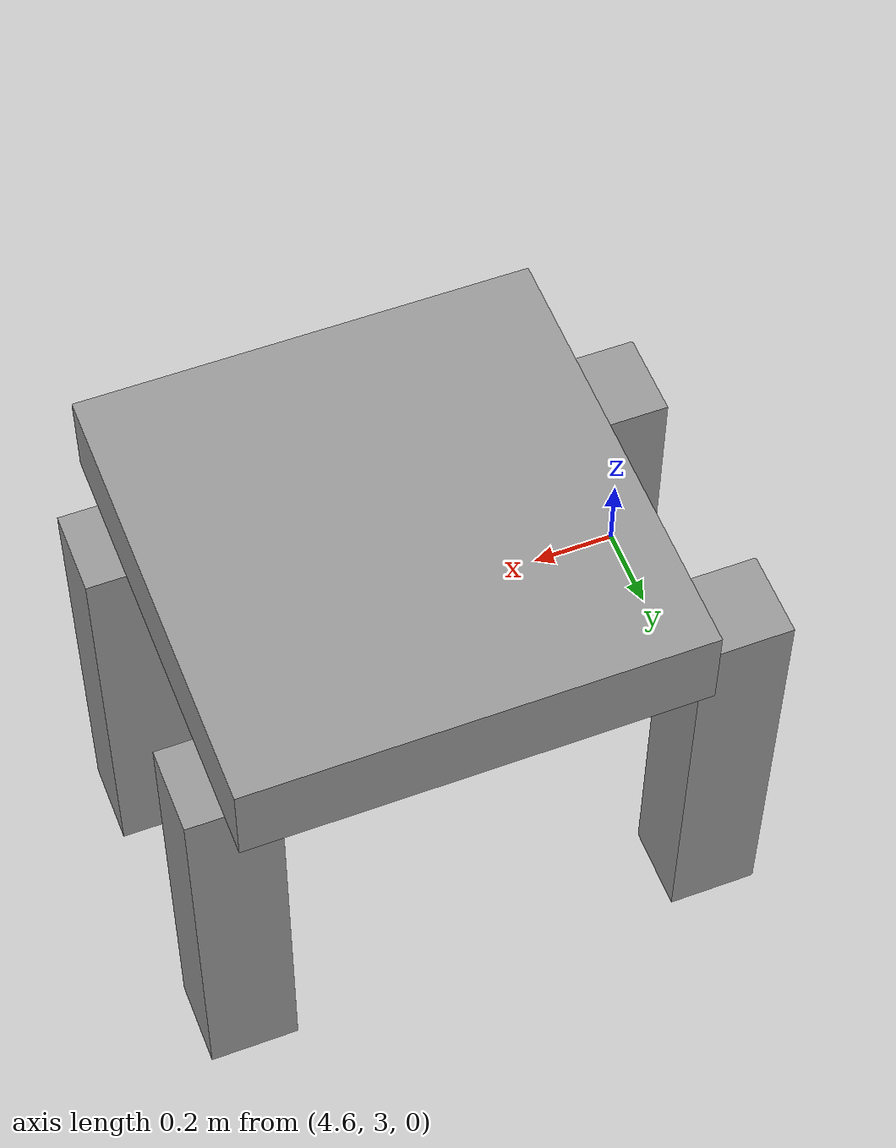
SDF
<?xml version='1.0'?>
<sdf version='1.6'>
  <model name='model'>
    <link name='link_1'>
      <pose frame=''>5.86822 3.27887 0.5 0 -0 0</pose>
      <inertial>
        <mass>1</mass>
        <inertia>
          <ixx>0.166667</ixx>
          <ixy>0</ixy>
          <ixz>0</ixz>
          <iyy>0.166667</iyy>
          <iyz>0</iyz>
          <izz>0.166667</izz>
        </inertia>
        <pose frame=''>0 0 0 0 -0 0</pose>
      </inertial>
      <gravity>1</gravity>
      <self_collide>0</self_collide>
      <kinematic>0</kinematic>
      <visual name='visual'>
        <pose frame=''>0 0 0 0 -0 0</pose>
        <geometry>
          <box>
            <size>0.2 0.19 1</size>
          </box>
        </geometry>
        <material>
          <lighting>1</lighting>
          <script>
            <uri>file://media/materials/scripts/gazebo.material</uri>
            <name>Gazebo/Grey</name>
          </script>
          <shader type='pixel'>
            <normal_map>__default__</normal_map>
          </shader>
          <ambient>0.3 0.3 0.3 1</ambient>
          <diffuse>0.7 0.7 0.7 1</diffuse>
          <specular>0.01 0.01 0.01 1</specular>
          <emissive>0 0 0 1</emissive>
        </material>
        <transparency>0</transparency>
        <cast_shadows>1</cast_shadows>
      </visual>
      <collision name='collision'>
        <laser_retro>0</laser_retro>
        <max_contacts>10</max_contacts>
        <pose frame=''>0 0 0 0 -0 0</pose>
        <geometry>
          <box>
            <size>0.2 0.2 1</size>
          </box>
        </geometry>
        <surface>
          <friction>
            <ode>
              <mu>1</mu>
              <mu2>1</mu2>
              <fdir1>0 0 0</fdir1>
              <slip1>0</slip1>
              <slip2>0</slip2>
            </ode>
            <torsional>
              <coefficient>1</coefficient>
              <patch_radius>0</patch_radius>
              <surface_radius>0</surface_radius>
              <use_patch_radius>1</use_patch_radius>
              <ode>
                <slip>0</slip>
              </ode>
            </torsional>
          </friction>
          <bounce>
            <restitution_coefficient>0</restitution_coefficient>
            <threshold>1e+06</threshold>
          </bounce>
          <contact>
            <collide_without_contact>0</collide_without_contact>
            <collide_without_contact_bitmask>1</collide_without_contact_bitmask>
            <collide_bitmask>1</collide_bitmask>
            <ode>
              <soft_cfm>0</soft_cfm>
              <soft_erp>0.2</soft_erp>
              <kp>1e+13</kp>
              <kd>1</kd>
              <max_vel>0.01</max_vel>
              <min_depth>0</min_depth>
            </ode>
            <bullet>
              <split_impulse>1</split_impulse>
              <split_impulse_penetration_threshold>-0.01</split_impulse_penetration_threshold>
              <soft_cfm>0</soft_cfm>
              <soft_erp>0.2</soft_erp>
              <kp>1e+13</kp>
              <kd>1</kd>
            </bullet>
          </contact>
        </surface>
      </collision>
    </link>
    <link name='link_1_clone'>
      <pose frame=''>5.86397 3.88662 0.5 0 -0 0</pose>
      <inertial>
        <mass>1</mass>
        <inertia>
          <ixx>0.166667</ixx>
          <ixy>0</ixy>
          <ixz>0</ixz>
          <iyy>0.166667</iyy>
          <iyz>0</iyz>
          <izz>0.166667</izz>
        </inertia>
        <pose frame=''>0 0 0 0 -0 0</pose>
      </inertial>
      <self_collide>0</self_collide>
      <kinematic>0</kinematic>
      <visual name='visual'>
        <pose frame=''>0 0 0 0 -0 0</pose>
        <geometry>
          <box>
            <size>0.2 0.19 1</size>
          </box>
        </geometry>
        <material>
          <lighting>1</lighting>
          <script>
            <uri>file://media/materials/scripts/gazebo.material</uri>
            <name>Gazebo/Grey</name>
          </script>
          <shader type='pixel'>
            <normal_map>__default__</normal_map>
          </shader>
          <ambient>0.3 0.3 0.3 1</ambient>
          <diffuse>0.7 0.7 0.7 1</diffuse>
          <specular>0.01 0.01 0.01 1</specular>
          <emissive>0 0 0 1</emissive>
        </material>
        <transparency>0</transparency>
        <cast_shadows>1</cast_shadows>
      </visual>
      <collision name='collision'>
        <laser_retro>0</laser_retro>
        <max_contacts>10</max_contacts>
        <pose frame=''>0 0 0 0 -0 0</pose>
        <geometry>
          <box>
            <size>0.2 0.2 1</size>
          </box>
        </geometry>
        <surface>
          <friction>
            <ode>
              <mu>1</mu>
              <mu2>1</mu2>
              <fdir1>0 0 0</fdir1>
              <slip1>0</slip1>
              <slip2>0</slip2>
            </ode>
            <torsional>
              <coefficient>1</coefficient>
              <patch_radius>0</patch_radius>
              <surface_radius>0</surface_radius>
              <use_patch_radius>1</use_patch_radius>
              <ode>
                <slip>0</slip>
              </ode>
            </torsional>
          </friction>
          <bounce>
            <restitution_coefficient>0</restitution_coefficient>
            <threshold>1e+06</threshold>
          </bounce>
          <contact>
            <collide_without_contact>0</collide_without_contact>
            <collide_without_contact_bitmask>1</collide_without_contact_bitmask>
            <collide_bitmask>1</collide_bitmask>
            <ode>
              <soft_cfm>0</soft_cfm>
              <soft_erp>0.2</soft_erp>
              <kp>1e+13</kp>
              <kd>1</kd>
              <max_vel>0.01</max_vel>
              <min_depth>0</min_depth>
            </ode>
            <bullet>
              <split_impulse>1</split_impulse>
              <split_impulse_penetration_threshold>-0.01</split_impulse_penetration_threshold>
              <soft_cfm>0</soft_cfm>
              <soft_erp>0.2</soft_erp>
              <kp>1e+13</kp>
              <kd>1</kd>
            </bullet>
          </contact>
        </surface>
      </collision>
    </link>
    <link name='link_1_clone_clone'>
      <pose frame=''>4.78065 3.27664 0.5 0 -0 0</pose>
      <inertial>
        <mass>1</mass>
        <inertia>
          <ixx>0.166667</ixx>
          <ixy>0</ixy>
          <ixz>0</ixz>
          <iyy>0.166667</iyy>
          <iyz>0</iyz>
          <izz>0.166667</izz>
        </inertia>
        <pose frame=''>0 0 0 0 -0 0</pose>
      </inertial>
      <self_collide>0</self_collide>
      <kinematic>0</kinematic>
      <visual name='visual'>
        <pose frame=''>0 0 0 0 -0 0</pose>
        <geometry>
          <box>
            <size>0.2 0.19 1</size>
          </box>
        </geometry>
        <material>
          <lighting>1</lighting>
          <script>
            <uri>file://media/materials/scripts/gazebo.material</uri>
            <name>Gazebo/Grey</name>
          </script>
          <shader type='pixel'>
            <normal_map>__default__</normal_map>
          </shader>
          <ambient>0.3 0.3 0.3 1</ambient>
          <diffuse>0.7 0.7 0.7 1</diffuse>
          <specular>0.01 0.01 0.01 1</specular>
          <emissive>0 0 0 1</emissive>
        </material>
        <transparency>0</transparency>
        <cast_shadows>1</cast_shadows>
      </visual>
      <collision name='collision'>
        <laser_retro>0</laser_retro>
        <max_contacts>10</max_contacts>
        <pose frame=''>0 0 0 0 -0 0</pose>
        <geometry>
          <box>
            <size>0.2 0.2 1</size>
          </box>
        </geometry>
        <surface>
          <friction>
            <ode>
              <mu>1</mu>
              <mu2>1</mu2>
              <fdir1>0 0 0</fdir1>
              <slip1>0</slip1>
              <slip2>0</slip2>
            </ode>
            <torsional>
              <coefficient>1</coefficient>
              <patch_radius>0</patch_radius>
              <surface_radius>0</surface_radius>
              <use_patch_radius>1</use_patch_radius>
              <ode>
                <slip>0</slip>
              </ode>
            </torsional>
          </friction>
          <bounce>
            <restitution_coefficient>0</restitution_coefficient>
            <threshold>1e+06</threshold>
          </bounce>
          <contact>
            <collide_without_contact>0</collide_without_contact>
            <collide_without_contact_bitmask>1</collide_without_contact_bitmask>
            <collide_bitmask>1</collide_bitmask>
            <ode>
              <soft_cfm>0</soft_cfm>
              <soft_erp>0.2</soft_erp>
              <kp>1e+13</kp>
              <kd>1</kd>
              <max_vel>0.01</max_vel>
              <min_depth>0</min_depth>
            </ode>
            <bullet>
              <split_impulse>1</split_impulse>
              <split_impulse_penetration_threshold>-0.01</split_impulse_penetration_threshold>
              <soft_cfm>0</soft_cfm>
              <soft_erp>0.2</soft_erp>
              <kp>1e+13</kp>
              <kd>1</kd>
            </bullet>
          </contact>
        </surface>
      </collision>
    </link>
    <link name='link_1_clone_clone_0'>
      <pose frame=''>4.767 3.88674 0.5 0 -0 0</pose>
      <inertial>
        <mass>1</mass>
        <inertia>
          <ixx>0.166667</ixx>
          <ixy>0</ixy>
          <ixz>0</ixz>
          <iyy>0.166667</iyy>
          <iyz>0</iyz>
          <izz>0.166667</izz>
        </inertia>
        <pose frame=''>0 0 0 0 -0 0</pose>
      </inertial>
      <self_collide>0</self_collide>
      <kinematic>0</kinematic>
      <visual name='visual'>
        <pose frame=''>0 0 0 0 -0 0</pose>
        <geometry>
          <box>
            <size>0.2 0.19 1</size>
          </box>
        </geometry>
        <material>
          <lighting>1</lighting>
          <script>
            <uri>file://media/materials/scripts/gazebo.material</uri>
            <name>Gazebo/Grey</name>
          </script>
          <shader type='pixel'>
            <normal_map>__default__</normal_map>
          </shader>
          <ambient>0.3 0.3 0.3 1</ambient>
          <diffuse>0.7 0.7 0.7 1</diffuse>
          <specular>0.01 0.01 0.01 1</specular>
          <emissive>0 0 0 1</emissive>
        </material>
        <transparency>0</transparency>
        <cast_shadows>1</cast_shadows>
      </visual>
      <collision name='collision'>
        <laser_retro>0</laser_retro>
        <max_contacts>10</max_contacts>
        <pose frame=''>0 0 0 0 -0 0</pose>
        <geometry>
          <box>
            <size>0.2 0.2 1</size>
          </box>
        </geometry>
        <surface>
          <friction>
            <ode>
              <mu>1</mu>
              <mu2>1</mu2>
              <fdir1>0 0 0</fdir1>
              <slip1>0</slip1>
              <slip2>0</slip2>
            </ode>
            <torsional>
              <coefficient>1</coefficient>
              <patch_radius>0</patch_radius>
              <surface_radius>0</surface_radius>
              <use_patch_radius>1</use_patch_radius>
              <ode>
                <slip>0</slip>
              </ode>
            </torsional>
          </friction>
          <bounce>
            <restitution_coefficient>0</restitution_coefficient>
            <threshold>1e+06</threshold>
          </bounce>
          <contact>
            <collide_without_contact>0</collide_without_contact>
            <collide_without_contact_bitmask>1</collide_without_contact_bitmask>
            <collide_bitmask>1</collide_bitmask>
            <ode>
              <soft_cfm>0</soft_cfm>
              <soft_erp>0.2</soft_erp>
              <kp>1e+13</kp>
              <kd>1</kd>
              <max_vel>0.01</max_vel>
              <min_depth>0</min_depth>
            </ode>
            <bullet>
              <split_impulse>1</split_impulse>
              <split_impulse_penetration_threshold>-0.01</split_impulse_penetration_threshold>
              <soft_cfm>0</soft_cfm>
              <soft_erp>0.2</soft_erp>
              <kp>1e+13</kp>
              <kd>1</kd>
            </bullet>
          </contact>
        </surface>
      </collision>
    </link>
    <link name='link_2'>
      <pose frame=''>5.3808 3.56736 0.5 0 -0 0</pose>
      <inertial>
        <mass>1</mass>
        <inertia>
          <ixx>0.166667</ixx>
          <ixy>0</ixy>
          <ixz>0</ixz>
          <iyy>0.166667</iyy>
          <iyz>0</iyz>
          <izz>0.166667</izz>
        </inertia>
        <pose frame=''>0 0 0 0 -0 0</pose>
      </inertial>
      <gravity>1</gravity>
      <self_collide>0</self_collide>
      <kinematic>0</kinematic>
      <visual name='visual'>
        <pose frame=''>0 0 0.6 0 -0 0</pose>
        <geometry>
          <box>
            <size>1 1 0.2</size>
          </box>
        </geometry>
        <material>
          <lighting>1</lighting>
          <script>
            <uri>file://media/materials/scripts/gazebo.material</uri>
            <name>Gazebo/Grey</name>
          </script>
          <shader type='pixel'>
            <normal_map>__default__</normal_map>
          </shader>
          <ambient>0.3 0.3 0.3 1</ambient>
          <diffuse>0.7 0.7 0.7 1</diffuse>
          <specular>0.01 0.01 0.01 1</specular>
          <emissive>0 0 0 1</emissive>
        </material>
        <transparency>0</transparency>
        <cast_shadows>1</cast_shadows>
      </visual>
      <collision name='collision'>
        <laser_retro>0</laser_retro>
        <max_contacts>10</max_contacts>
        <pose frame=''>0 0 0.6 0 -0 0</pose>
        <geometry>
          <box>
            <size>1 1 0.2</size>
          </box>
        </geometry>
        <surface>
          <friction>
            <ode>
              <mu>1</mu>
              <mu2>1</mu2>
              <fdir1>0 0 0</fdir1>
              <slip1>0</slip1>
              <slip2>0</slip2>
            </ode>
            <torsional>
              <coefficient>1</coefficient>
              <patch_radius>0</patch_radius>
              <surface_radius>0</surface_radius>
              <use_patch_radius>1</use_patch_radius>
              <ode>
                <slip>0</slip>
              </ode>
            </torsional>
          </friction>
          <bounce>
            <restitution_coefficient>0</restitution_coefficient>
            <threshold>1e+06</threshold>
          </bounce>
          <contact>
            <collide_without_contact>0</collide_without_contact>
            <collide_without_contact_bitmask>1</collide_without_contact_bitmask>
            <collide_bitmask>1</collide_bitmask>
            <ode>
              <soft_cfm>0</soft_cfm>
              <soft_erp>0.2</soft_erp>
              <kp>1e+13</kp>
              <kd>1</kd>
              <max_vel>0.01</max_vel>
              <min_depth>0</min_depth>
            </ode>
            <bullet>
              <split_impulse>1</split_impulse>
              <split_impulse_penetration_threshold>-0.01</split_impulse_penetration_threshold>
              <soft_cfm>0</soft_cfm>
              <soft_erp>0.2</soft_erp>
              <kp>1e+13</kp>
              <kd>1</kd>
            </bullet>
          </contact>
        </surface>
      </collision>
    </link>
    <joint name='link_2_JOINT_2' type='fixed'>
      <parent>link_2</parent>
      <child>link_1</child>
      <pose frame=''>0 0 0 0 -0 0</pose>
      <physics>
        <ode>
          <limit>
            <cfm>0</cfm>
            <erp>0.2</erp>
          </limit>
          <suspension>
            <cfm>0</cfm>
            <erp>0.2</erp>
          </suspension>
        </ode>
      </physics>
    </joint>
    <joint name='link_2_JOINT_3' type='fixed'>
      <parent>link_2</parent>
      <child>link_1_clone</child>
      <pose frame=''>0 0 0 0 -0 0</pose>
      <physics>
        <ode>
          <limit>
            <cfm>0</cfm>
            <erp>0.2</erp>
          </limit>
          <suspension>
            <cfm>0</cfm>
            <erp>0.2</erp>
          </suspension>
        </ode>
      </physics>
    </joint>
    <joint name='link_2_JOINT_4' type='fixed'>
      <parent>link_2</parent>
      <child>link_1_clone_clone_0</child>
      <pose frame=''>0 0 0 0 -0 0</pose>
      <physics>
        <ode>
          <limit>
            <cfm>0</cfm>
            <erp>0.2</erp>
          </limit>
          <suspension>
            <cfm>0</cfm>
            <erp>0.2</erp>
          </suspension>
        </ode>
      </physics>
    </joint>
    <joint name='link_2_JOINT_5' type='fixed'>
      <parent>link_2</parent>
      <child>link_1_clone_clone</child>
      <pose frame=''>0 0 0 0 -0 0</pose>
      <physics>
        <ode>
          <limit>
            <cfm>0</cfm>
            <erp>0.2</erp>
          </limit>
          <suspension>
            <cfm>0</cfm>
            <erp>0.2</erp>
          </suspension>
        </ode>
      </physics>
    </joint>
    <static>0</static>
    <allow_auto_disable>1</allow_auto_disable>
  </model>
</sdf>
